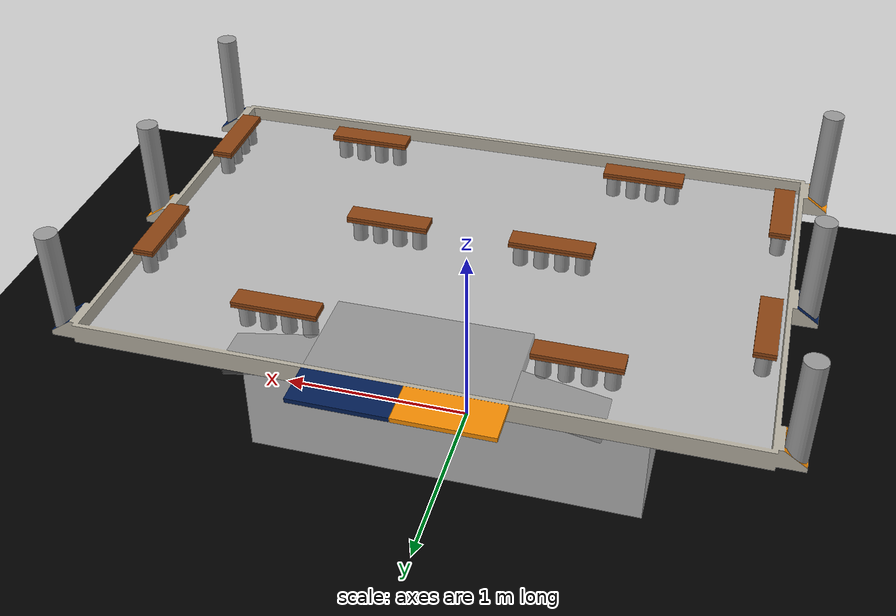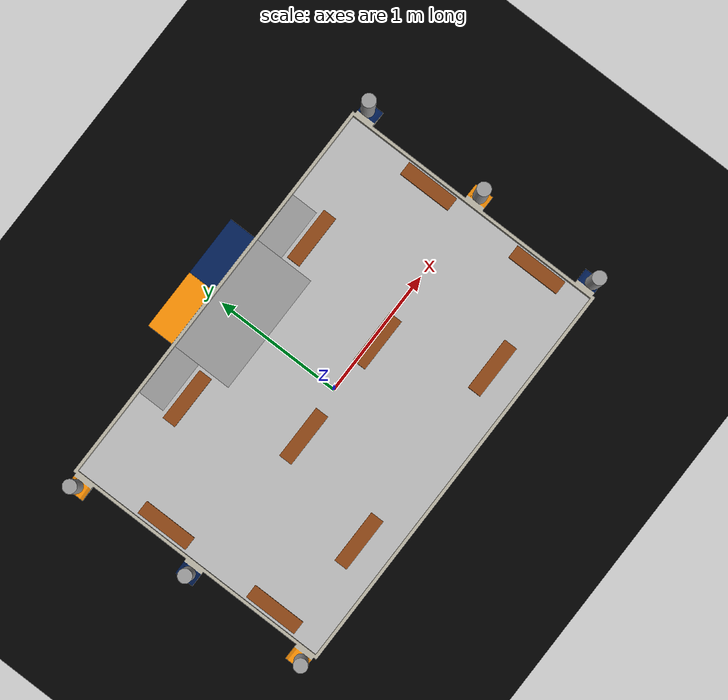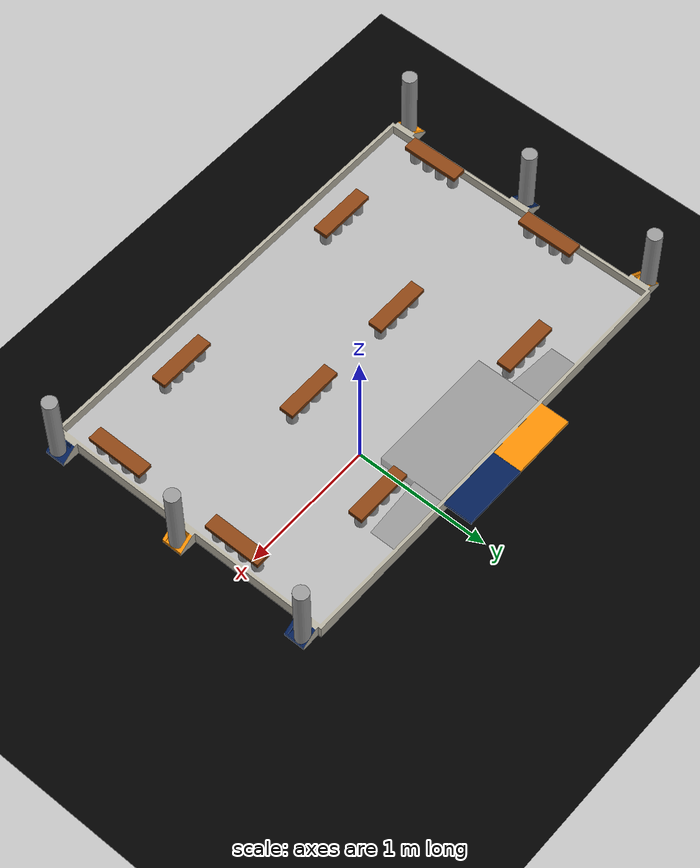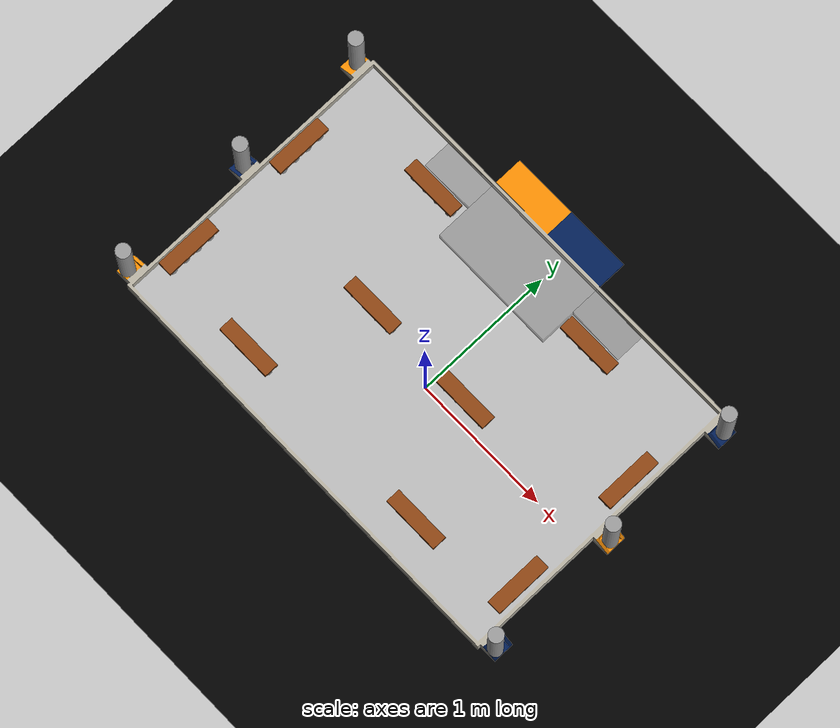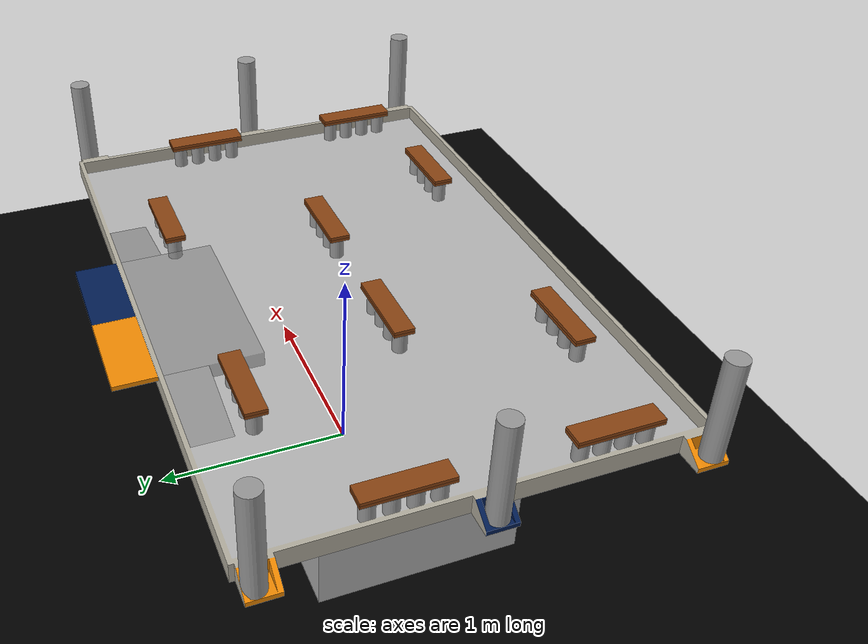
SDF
<sdf version='1.7'>
    <world name='default'>
        <!-- stand 0 -->
        <model name="column_0_0">
            <include>
                <pose>-1.425 -0.45 1 0 0 0</pose>
                <uri>model://column</uri>
            </include>
        </model>
        <model name="column_0_1">
            <include>
                <pose>-1.425 -0.55 1 0 0 0</pose>
                <uri>model://column</uri>
            </include>
        </model>
        <model name="column_0_2">
            <include>
                <pose>-1.425 -0.65 1 0 0 0</pose>
                <uri>model://column</uri>
            </include>
        </model>
        <model name="column_0_3">
            <include>
                <pose>-1.425 -0.75 1 0 0 0</pose>
                <uri>model://column</uri>
            </include>
        </model>
        <model name="platform_0_0">
            <include>
                <pose>-1.425 -0.6 1.117 0 0 1.570796</pose>
                <uri>model://platform</uri>
            </include>
        </model>
        <model name="platform_0_1">
            <include>
                <pose>-1.425 -0.6 1.132 0 0 1.570796</pose>
                <uri>model://platform</uri>
            </include>
        </model>

        <!-- stand 1 -->
        <model name="column_1_0">
            <include>
                <pose>1.425 -0.45 1 0 0 0</pose>
                <uri>model://column</uri>
            </include>
        </model>
        <model name="column_1_1">
            <include>
                <pose>1.425 -0.55 1 0 0 0</pose>
                <uri>model://column</uri>
            </include>
        </model>
        <model name="column_1_2">
            <include>
                <pose>1.425 -0.65 1 0 0 0</pose>
                <uri>model://column</uri>
            </include>
        </model>
        <model name="column_1_3">
            <include>
                <pose>1.425 -0.75 1 0 0 0</pose>
                <uri>model://column</uri>
            </include>
        </model>
        <model name="platform_1_0">
            <include>
                <pose>1.425 -0.6 1.117 0 0 1.570796</pose>
                <uri>model://platform</uri>
            </include>
        </model>
        <model name="platform_1_1">
            <include>
                <pose>1.425 -0.6 1.132 0 0 1.570796</pose>
                <uri>model://platform</uri>
            </include>
        </model>

        <!-- stand 2 -->
        <model name="column_2_0">
            <include>
                <pose>0.875 -0.765 1 0 0 0</pose>
                <uri>model://column</uri>
            </include>
        </model>
        <model name="column_2_1">
            <include>
                <pose>0.775 -0.765 1 0 0 0</pose>
                <uri>model://column</uri>
            </include>
        </model>
        <model name="column_2_2">
            <include>
                <pose>0.675 -0.765 1 0 0 0</pose>
                <uri>model://column</uri>
            </include>
        </model>
        <model name="column_2_3">
            <include>
                <pose>0.575 -0.765 1 0 0 0</pose>
                <uri>model://column</uri>
            </include>
        </model>
        <model name="platform_2_0">
            <include>
                <pose>0.725 -0.765 1.117 0 0 0</pose>
                <uri>model://platform</uri>
            </include>
        </model>
        <model name="platform_2_1">
            <include>
                <pose>0.725 -0.765 1.132 0 0 0</pose>
                <uri>model://platform</uri>
            </include>
        </model>

        <!-- stand 3 -->
        <model name="column_3_0">
            <include>
                <pose>-0.875 -0.765 1 0 0 0</pose>
                <uri>model://column</uri>
            </include>
        </model>
        <model name="column_3_1">
            <include>
                <pose>-0.775 -0.765 1 0 0 0</pose>
                <uri>model://column</uri>
            </include>
        </model>
        <model name="column_3_2">
            <include>
                <pose>-0.675 -0.765 1 0 0 0</pose>
                <uri>model://column</uri>
            </include>
        </model>
        <model name="column_3_3">
            <include>
                <pose>-0.575 -0.765 1 0 0 0</pose>
                <uri>model://column</uri>
            </include>
        </model>
        <model name="platform_3_0">
            <include>
                <pose>-0.725 -0.765 1.117 0 0 0</pose>
                <uri>model://platform</uri>
            </include>
        </model>
        <model name="platform_3_1">
            <include>
                <pose>-0.725 -0.765 1.132 0 0 0</pose>
                <uri>model://platform</uri>
            </include>
        </model>

        <!-- stand 4 -->
        <model name="column_4_0">
            <include>
                <pose>-0.55 -0.05 1 0 0 0</pose>
                <uri>model://column</uri>
            </include>
        </model>
        <model name="column_4_1">
            <include>
                <pose>-0.45 -0.05 1 0 0 0</pose>
                <uri>model://column</uri>
            </include>
        </model>
        <model name="column_4_2">
            <include>
                <pose>-0.35 -0.05 1 0 0 0</pose>
                <uri>model://column</uri>
            </include>
        </model>
        <model name="column_4_3">
            <include>
                <pose>-0.25 -0.05 1 0 0 0</pose>
                <uri>model://column</uri>
            </include>
        </model>
        <model name="platform_4_0">
            <include>
                <pose>-0.4 -0.05 1.117 0 0 0</pose>
                <uri>model://platform</uri>
            </include>
        </model>
        <model name="platform_4_1">
            <include>
                <pose>-0.4 -0.05 1.132 0 0 0</pose>
                <uri>model://platform</uri>
            </include>
        </model>

        <!-- stand 5 -->
        <model name="column_5_0">
            <include>
                <pose>0.55 -0.05 1 0 0 0</pose>
                <uri>model://column</uri>
            </include>
        </model>
        <model name="column_5_1">
            <include>
                <pose>0.45 -0.05 1 0 0 0</pose>
                <uri>model://column</uri>
            </include>
        </model>
        <model name="column_5_2">
            <include>
                <pose>0.35 -0.05 1 0 0 0</pose>
                <uri>model://column</uri>
            </include>
        </model>
        <model name="column_5_3">
            <include>
                <pose>0.25 -0.05 1 0 0 0</pose>
                <uri>model://column</uri>
            </include>
        </model>
        <model name="platform_5_0">
            <include>
                <pose>0.4 -0.05 1.117 0 0 0</pose>
                <uri>model://platform</uri>
            </include>
        </model>
        <model name="platform_5_1">
            <include>
                <pose>0.4 -0.05 1.132 0 0 0</pose>
                <uri>model://platform</uri>
            </include>
        </model>

        <!-- stand 6 -->
        <model name="column_6_0">
            <include>
                <pose>1.425 0.16 1 0 0 0</pose>
                <uri>model://column</uri>
            </include>
        </model>
        <model name="column_6_1">
            <include>
                <pose>1.425 0.26 1 0 0 0</pose>
                <uri>model://column</uri>
            </include>
        </model>
        <model name="column_6_2">
            <include>
                <pose>1.425 0.36 1 0 0 0</pose>
                <uri>model://column</uri>
            </include>
        </model>
        <model name="column_6_3">
            <include>
                <pose>1.425 0.46 1 0 0 0</pose>
                <uri>model://column</uri>
            </include>
        </model>
        <model name="platform_6_0">
            <include>
                <pose>1.425 0.31 1.117 0 0 1.570796</pose>
                <uri>model://platform</uri>
            </include>
        </model>
        <model name="platform_6_1">
            <include>
                <pose>1.425 0.31 1.132 0 0 1.570796</pose>
                <uri>model://platform</uri>
            </include>
        </model>

        <!-- stand 7 -->
        <model name="column_7_0">
            <include>
                <pose>-1.425 0.16 1 0 0 0</pose>
                <uri>model://column</uri>
            </include>
        </model>
        <model name="column_7_1">
            <include>
                <pose>-1.425 0.26 1 0 0 0</pose>
                <uri>model://column</uri>
            </include>
        </model>
        <model name="column_7_2">
            <include>
                <pose>-1.425 0.36 1 0 0 0</pose>
                <uri>model://column</uri>
            </include>
        </model>
        <model name="column_7_3">
            <include>
                <pose>-1.425 0.46 1 0 0 0</pose>
                <uri>model://column</uri>
            </include>
        </model>
        <model name="platform_7_0">
            <include>
                <pose>-1.425 0.31 1.117 0 0 1.570796</pose>
                <uri>model://platform</uri>
            </include>
        </model>
        <model name="platform_7_1">
            <include>
                <pose>-1.425 0.31 1.132 0 0 1.570796</pose>
                <uri>model://platform</uri>
            </include>
        </model>

        <!-- stand 8 -->
        <model name="column_8_0">
            <include>
                <pose>-0.825 0.715 1 0 0 0</pose>
                <uri>model://column</uri>
            </include>
        </model>
        <model name="column_8_1">
            <include>
                <pose>-0.725 0.715 1 0 0 0</pose>
                <uri>model://column</uri>
            </include>
        </model>
        <model name="column_8_2">
            <include>
                <pose>-0.625 0.715 1 0 0 0</pose>
                <uri>model://column</uri>
            </include>
        </model>
        <model name="column_8_3">
            <include>
                <pose>-0.525 0.715 1 0 0 0</pose>
                <uri>model://column</uri>
            </include>
        </model>
        <model name="platform_8_0">
            <include>
                <pose>-0.675 0.715 1.117 0 0 0</pose>
                <uri>model://platform</uri>
            </include>
        </model>
        <model name="platform_8_1">
            <include>
                <pose>-0.675 0.715 1.132 0 0 0</pose>
                <uri>model://platform</uri>
            </include>
        </model>

        <!-- stand 9 -->
        <model name="column_9_0">
            <include>
                <pose>0.825 0.715 1 0 0 0</pose>
                <uri>model://column</uri>
            </include>
        </model>
        <model name="column_9_1">
            <include>
                <pose>0.725 0.715 1 0 0 0</pose>
                <uri>model://column</uri>
            </include>
        </model>
        <model name="column_9_2">
            <include>
                <pose>0.625 0.715 1 0 0 0</pose>
                <uri>model://column</uri>
            </include>
        </model>
        <model name="column_9_3">
            <include>
                <pose>0.525 0.715 1 0 0 0</pose>
                <uri>model://column</uri>
            </include>
        </model>
        <model name="platform_9_0">
            <include>
                <pose>0.675 0.715 1.117 0 0 0</pose>
                <uri>model://platform</uri>
            </include>
        </model>
        <model name="platform_9_1">
            <include>
                <pose>0.675 0.715 1.132 0 0 0</pose>
                <uri>model://platform</uri>
            </include>
        </model>

        <!-- Beacons -->
        <include>
            <name>beacon_yellow_0</name>
            <pose>-1.594 0.95 1 0 0 0</pose>
            <uri>model://beacon</uri>
        </include>
        <include>
            <name>beacon_yellow_1</name>
            <pose>1.594 0 1 0 0 0</pose>
            <uri>model://beacon</uri>
        </include>
        <include>
            <name>beacon_yellow_2</name>
            <pose>-1.594 -0.95 1 0 0 0</pose>
            <uri>model://beacon</uri>
        </include>

        <include>
            <name>beacon_blue_0</name>
            <pose>1.594 0.95 1 0 0 0</pose>
            <uri>model://beacon</uri>
        </include>
        <include>
            <name>beacon_blue_1</name>
            <pose>-1.594 0 1 0 0 0</pose>
            <uri>model://beacon</uri>
        </include>
        <include>
            <name>beacon_blue_2</name>
            <pose>1.594 -0.95 1 0 0 0</pose>
            <uri>model://beacon</uri>
        </include>

        <!-- Board -->
        <include>
            <pose>0 0 0.978 0 0 0</pose>
            <uri>model://board</uri>
        </include>
        <model name='ramp_0'>
            <static>1</static>
            <pose>0.64 0.9 1 0 0.177 0</pose>
            <link name="link">
                <visual name="visual">
                    <geometry>
                        <box>
                            <size>0.4 0.2 0.07</size>
                        </box>
                    </geometry>
                    <material>
                        <lighting>1</lighting>
                        <shader type='pixel'>
                            <normal_map>__default__</normal_map>
                        </shader>
                        <ambient>0.8 0.8 0.8 0.5</ambient>
                        <diffuse>0.5 0.5 0.5 0.5</diffuse>
                        <specular>0.01 0.01 0.01 1</specular>
                        <emissive>0 0 0 1</emissive>
                    </material>
                </visual>
                <collision name="collision">
                    <geometry>
                        <box>
                            <size>0.4 0.2 0.07</size>
                        </box>
                    </geometry>
                </collision>
            </link>
        </model>
        <model name='ramp_1'>
            <static>1</static>
            <pose>-0.64 0.9 1 0 -0.177 0</pose>
            <link name="link">
                <visual name="visual">
                    <geometry>
                        <box>
                            <size>0.4 0.2 0.07</size>
                        </box>
                    </geometry>
                    <material>
                        <lighting>1</lighting>
                        <shader type='pixel'>
                            <normal_map>__default__</normal_map>
                        </shader>
                        <ambient>0.8 0.8 0.8 0.5</ambient>
                        <diffuse>0.5 0.5 0.5 0.5</diffuse>
                        <specular>0.01 0.01 0.01 1</specular>
                        <emissive>0 0 0 1</emissive>
                    </material>
                </visual>
                <collision name="collision">
                    <geometry>
                        <box>
                            <size>0.4 0.2 0.07</size>
                        </box>
                    </geometry>
                </collision>
            </link>
        </model>
        <model name='scene'>
            <static>1</static>
            <pose>0 0.775 1.035 0 0 0</pose>
            <link name="link">
                <visual name="visual">
                    <geometry>
                        <box>
                            <size>0.9 0.45 0.07</size>
                        </box>
                    </geometry>
                    <material>
                        <lighting>1</lighting>
                        <shader type='pixel'>
                            <normal_map>__default__</normal_map>
                        </shader>
                        <ambient>0.8 0.8 0.8 0.5</ambient>
                        <diffuse>0.5 0.5 0.5 0.5</diffuse>
                        <specular>0.01 0.01 0.01 1</specular>
                        <emissive>0 0 0 1</emissive>
                    </material>
                </visual>
                <collision name="collision">
                    <geometry>
                        <box>
                            <size>0.9 0.45 0.07</size>
                        </box>
                    </geometry>
                </collision>
            </link>
        </model>
        <model name='board_support'>
            <static>1</static>
            <pose>0 0 0.5 0 0 0</pose>
            <link name="link">
                <visual name="visual">
                    <geometry>
                        <box>
                            <size>2 1 0.978</size>
                        </box>
                    </geometry>
                    <material>
                        <lighting>1</lighting>
                        <shader type='pixel'>
                            <normal_map>__default__</normal_map>
                        </shader>
                        <ambient>1 1 1 0.5</ambient>
                        <diffuse>0.7 0.7 0.7 1</diffuse>
                        <specular>0.01 0.01 0.01 1</specular>
                        <emissive>0 0 0 1</emissive>
                    </material>
                </visual>
                <collision name="collision">
                    <geometry>
                        <box>
                            <size>2 1 0.978</size>
                        </box>
                    </geometry>
                </collision>
            </link>
        </model>
        <model name='ground_plane'>
            <static>1</static>
            <link name='link'>
                <collision name='collision'>
                    <geometry>
                        <plane>
                            <normal>0 0 1</normal>
                            <size>20 20</size>
                        </plane>
                    </geometry>
                    <max_contacts>10</max_contacts>
                </collision>
                <visual name="visual">
                    <geometry>
                        <plane>
                            <normal>0 0 1</normal>
                            <size>20 20</size>
                        </plane>
                    </geometry>
                    <material>
                        <lighting>1</lighting>
                        <ambient>0.4 0.4 0.4 1</ambient>
                        <diffuse>0 0 0 1</diffuse>
                        <specular>0 0 0 1</specular>
                        <emissive>0 0 0 1</emissive>
                    </material>
                </visual>
                <self_collide>0</self_collide>
                <enable_wind>0</enable_wind>
                <kinematic>0</kinematic>
            </link>
        </model>
        <light name='spot_top' type='spot'>
            <pose>0 0 10 0 0 0</pose>
            <diffuse>1 1 1 1</diffuse>
            <specular>0.1 0.1 0.1 1</specular>
            <direction>0 0 -1</direction>
            <attenuation>
                <range>20</range>
                <constant>0.05</constant>
                <linear>0.01</linear>
                <quadratic>0.001</quadratic>
            </attenuation>
            <cast_shadows>0</cast_shadows>
            <spot>
                <inner_angle>0.6</inner_angle>
                <outer_angle>1</outer_angle>
                <falloff>1</falloff>
            </spot>
        </light>
        <light name='spot_bl' type='spot'>
            <pose>-12 -12 2 0 0 0</pose>
            <diffuse>1 1 1 1</diffuse>
            <specular>0.1 0.1 0.1 1</specular>
            <direction>1 1 -0.01</direction>
            <attenuation>
                <range>20</range>
                <constant>0.05</constant>
                <linear>0.01</linear>
                <quadratic>0.001</quadratic>
            </attenuation>
            <cast_shadows>0</cast_shadows>
            <spot>
                <inner_angle>0.6</inner_angle>
                <outer_angle>1</outer_angle>
                <falloff>1</falloff>
            </spot>
        </light>
        <light name='spot_tr' type='spot'>
            <pose>12 12 2 0 0 0</pose>
            <diffuse>1 1 1 1</diffuse>
            <specular>0.1 0.1 0.1 1</specular>
            <direction>-1 -1 -0.01</direction>
            <attenuation>
                <range>20</range>
                <constant>0.05</constant>
                <linear>0.01</linear>
                <quadratic>0.001</quadratic>
            </attenuation>
            <cast_shadows>0</cast_shadows>
            <spot>
                <inner_angle>0.6</inner_angle>
                <outer_angle>1</outer_angle>
                <falloff>1</falloff>
            </spot>
        </light>
        <light name='sun' type='directional'>
            <cast_shadows>1</cast_shadows>
            <pose>0 0 10 0 -0 0</pose>
            <diffuse>0.8 0.8 0.8 1</diffuse>
            <specular>0.2 0.2 0.2 1</specular>
            <attenuation>
                <range>1000</range>
                <constant>0.9</constant>
                <linear>0.01</linear>
                <quadratic>0.001</quadratic>
            </attenuation>
            <direction>-0.5 0.1 -0.9</direction>
            <spot>
                <inner_angle>0</inner_angle>
                <outer_angle>0</outer_angle>
                <falloff>0</falloff>
            </spot>
        </light>
        <gui fullscreen='0'>
            <camera name='user_camera'>
                <pose>0 -4.5 5.5 0 0.8 1.6</pose>
                <view_controller>orbit</view_controller>
                <projection_type>perspective</projection_type>
            </camera>
        </gui>
    </world>
</sdf>

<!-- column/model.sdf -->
<sdf version='1.7'>
    <model name='column'>
        <link name='link_1'>
            <inertial>
                <mass>0.05</mass>
                <inertia>
                    <ixx>0.00225266</ixx>
                    <ixy>0</ixy>
                    <ixz>0</ixz>
                    <iyy>0.00225266</iyy>
                    <iyz>0</iyz>
                    <izz>0.00258456</izz>
                </inertia>
                <pose>0 0 0 0 -0 0</pose>
            </inertial>
            <pose>0 0 0.0545 0 -0 0</pose>
            <gravity>1</gravity>
            <self_collide>0</self_collide>
            <kinematic>0</kinematic>
            <enable_wind>0</enable_wind>
            <visual name='visual'>
                <pose>0 0 0 0 -0 0</pose>
                <geometry>
                    <cylinder>
                        <radius>0.03515</radius>
                        <length>0.109</length>
                    </cylinder>
                </geometry>
                <material>
                    <lighting>1</lighting>
                    <shader type='pixel'>
                        <normal_map>__default__</normal_map>
                    </shader>
                    <ambient>0.6 0.6 0.6 1</ambient>
                    <diffuse>0.6 0.6 0.6 1</diffuse>
                </material>
                <transparency>0</transparency>
                <cast_shadows>1</cast_shadows>
            </visual>
            <collision name='collision'>
                <laser_retro>0</laser_retro>
                <max_contacts>10</max_contacts>
                <pose>0 0 0 0 -0 0</pose>
                <geometry>
                    <cylinder>
                        <radius>0.03515</radius>
                        <length>0.109</length>
                    </cylinder>
                </geometry>
                <surface>
                    <friction>
                        <ode>
                            <mu>1</mu>
                            <mu2>1</mu2>
                            <fdir1>0 0 0</fdir1>
                            <slip1>0</slip1>
                            <slip2>0</slip2>
                        </ode>
                        <torsional>
                            <coefficient>1</coefficient>
                            <patch_radius>0</patch_radius>
                            <surface_radius>0</surface_radius>
                            <use_patch_radius>1</use_patch_radius>
                            <ode>
                                <slip>0</slip>
                            </ode>
                        </torsional>
                    </friction>
                    <bounce>
                        <restitution_coefficient>0</restitution_coefficient>
                        <threshold>1e+06</threshold>
                    </bounce>
                    <contact>
                        <collide_without_contact>0</collide_without_contact>
                        <collide_without_contact_bitmask>1</collide_without_contact_bitmask>
                        <collide_bitmask>1</collide_bitmask>
                        <ode>
                            <soft_cfm>0</soft_cfm>
                            <soft_erp>0.2</soft_erp>
                            <kp>1e+13</kp>
                            <kd>1</kd>
                            <max_vel>0.01</max_vel>
                            <min_depth>0</min_depth>
                        </ode>
                        <bullet>
                            <split_impulse>1</split_impulse>
                            <split_impulse_penetration_threshold>-0.01</split_impulse_penetration_threshold>
                            <soft_cfm>0</soft_cfm>
                            <soft_erp>0.2</soft_erp>
                            <kp>1e+13</kp>
                            <kd>1</kd>
                        </bullet>
                    </contact>
                </surface>
            </collision>
        </link>
        <static>0</static>
        <allow_auto_disable>1</allow_auto_disable>
    </model>
</sdf>

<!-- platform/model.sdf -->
<sdf version='1.7'>
    <model name='platform'>
        <link name='link_2'>
            <inertial>
                <mass>0.42</mass>
                <inertia>
                    <ixx>0.07</ixx>
                    <ixy>0</ixy>
                    <ixz>0</ixz>
                    <iyy>0.07</iyy>
                    <iyz>0</iyz>
                    <izz>0.07</izz>
                </inertia>
                <pose>0 0 0 0 -0 0</pose>
            </inertial>
            <pose>0 0 -0 0 -0 0</pose>
            <gravity>1</gravity>
            <self_collide>0</self_collide>
            <kinematic>0</kinematic>
            <enable_wind>0</enable_wind>
            <visual name='visual'>
                <pose>0 0 0 0 -0 0</pose>
                <geometry>
                    <box>
                        <size>0.4 0.1 0.015</size>
                    </box>
                </geometry>
                <material>
                    <lighting>1</lighting>
                    <shader type='pixel'>
                        <normal_map>__default__</normal_map>
                    </shader>
                    <ambient>0.545 0.267 0.074 1</ambient>
                    <diffuse>0.545 0.267 0.074 1</diffuse>
                    <specular>0.01 0.01 0.01 1</specular>
                    <emissive>0 0 0 1</emissive>
                </material>
                <transparency>0</transparency>
                <cast_shadows>1</cast_shadows>
            </visual>
            <collision name='collision'>
                <laser_retro>0</laser_retro>
                <max_contacts>10</max_contacts>
                <pose>0 0 0 0 -0 0</pose>
                <geometry>
                    <box>
                        <size>0.4 0.1 0.015</size>
                    </box>
                </geometry>
                <surface>
                    <friction>
                        <ode>
                            <mu>1</mu>
                            <mu2>1</mu2>
                            <fdir1>0 0 0</fdir1>
                            <slip1>0</slip1>
                            <slip2>0</slip2>
                        </ode>
                        <torsional>
                            <coefficient>1</coefficient>
                            <patch_radius>0</patch_radius>
                            <surface_radius>0</surface_radius>
                            <use_patch_radius>1</use_patch_radius>
                            <ode>
                                <slip>0</slip>
                            </ode>
                        </torsional>
                    </friction>
                    <bounce>
                        <restitution_coefficient>0</restitution_coefficient>
                        <threshold>1e+06</threshold>
                    </bounce>
                    <contact>
                        <collide_without_contact>0</collide_without_contact>
                        <collide_without_contact_bitmask>1</collide_without_contact_bitmask>
                        <collide_bitmask>1</collide_bitmask>
                        <ode>
                            <soft_cfm>0</soft_cfm>
                            <soft_erp>0.2</soft_erp>
                            <kp>1e+13</kp>
                            <kd>1</kd>
                            <max_vel>0.01</max_vel>
                            <min_depth>0</min_depth>
                        </ode>
                        <bullet>
                            <split_impulse>1</split_impulse>
                            <split_impulse_penetration_threshold>-0.01</split_impulse_penetration_threshold>
                            <soft_cfm>0</soft_cfm>
                            <soft_erp>0.2</soft_erp>
                            <kp>1e+13</kp>
                            <kd>1</kd>
                        </bullet>
                    </contact>
                </surface>
            </collision>
        </link>
        <static>0</static>
        <allow_auto_disable>1</allow_auto_disable>
    </model>
</sdf>

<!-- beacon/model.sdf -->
<sdf version='1.7'>
    <model name='beacon'>
        <link name='link_0'>
            <inertial>
                <mass>0.5</mass>
                <inertia>
                    <ixx>0.0107292</ixx>
                    <ixy>0</ixy>
                    <ixz>0</ixz>
                    <iyy>0.0107292</iyy>
                    <iyz>0</iyz>
                    <izz>0.000625</izz>
                </inertia>
                <pose>0 0 0 0 -0 0</pose>
            </inertial>
            <pose>0 0 0 0 -0 0</pose>
            <gravity>1</gravity>
            <self_collide>0</self_collide>
            <kinematic>0</kinematic>
            <enable_wind>0</enable_wind>
            <visual name='visual'>
                <pose>0 0 0.25 0 -0 0</pose>
                <geometry>
                    <cylinder>
                        <radius>0.05</radius>
                        <length>0.5</length>
                    </cylinder>
                </geometry>
                <material>
                    <lighting>1</lighting>
                    <script>
                        <uri>file://media/materials/scripts/gazebo.material</uri>
                        <name>Gazebo/Grey</name>
                    </script>
                    <shader type='pixel'>
                        <normal_map>__default__</normal_map>
                    </shader>
                    <ambient>0.9 0.9 0.9 1</ambient>
                    <diffuse>0.9 0.9 0.9 1</diffuse>
                    <specular>0.01 0.01 0.01 1</specular>
                    <emissive>0 0 0 1</emissive>
                </material>
                <transparency>0</transparency>
                <cast_shadows>1</cast_shadows>
            </visual>
            <collision name='collision'>
                <laser_retro>0</laser_retro>
                <max_contacts>10</max_contacts>
                <pose>0 0 0.25 0 -0 0</pose>
                <geometry>
                    <cylinder>
                        <radius>0.05</radius>
                        <length>0.5</length>
                    </cylinder>
                </geometry>
                <surface>
                    <friction>
                        <ode>
                            <mu>1</mu>
                            <mu2>1</mu2>
                            <fdir1>0 0 0</fdir1>
                            <slip1>0</slip1>
                            <slip2>0</slip2>
                        </ode>
                        <torsional>
                            <coefficient>1</coefficient>
                            <patch_radius>0</patch_radius>
                            <surface_radius>0</surface_radius>
                            <use_patch_radius>1</use_patch_radius>
                            <ode>
                                <slip>0</slip>
                            </ode>
                        </torsional>
                    </friction>
                    <bounce>
                        <restitution_coefficient>0</restitution_coefficient>
                        <threshold>1e+06</threshold>
                    </bounce>
                    <contact>
                        <collide_without_contact>0</collide_without_contact>
                        <collide_without_contact_bitmask>1</collide_without_contact_bitmask>
                        <collide_bitmask>1</collide_bitmask>
                        <ode>
                            <soft_cfm>0</soft_cfm>
                            <soft_erp>0.2</soft_erp>
                            <kp>1e+13</kp>
                            <kd>1</kd>
                            <max_vel>0.01</max_vel>
                            <min_depth>0</min_depth>
                        </ode>
                        <bullet>
                            <split_impulse>1</split_impulse>
                            <split_impulse_penetration_threshold>-0.01</split_impulse_penetration_threshold>
                            <soft_cfm>0</soft_cfm>
                            <soft_erp>0.2</soft_erp>
                            <kp>1e+13</kp>
                            <kd>1</kd>
                        </bullet>
                    </contact>
                </surface>
            </collision>
        </link>
        <static>1</static>
        <allow_auto_disable>1</allow_auto_disable>
    </model>
</sdf>

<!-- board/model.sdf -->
<sdf version='1.7'>
    <model name='board'>
        <link name='link_0'>
            <pose>0 0 0 0 -0 0</pose>
            <gravity>1</gravity>
            <self_collide>0</self_collide>
            <kinematic>0</kinematic>
            <enable_wind>0</enable_wind>
            <visual name='visual'>
                <pose>0 0 0 0 0 0</pose>
                <geometry>
                    <mesh>
                        <uri>model://board/meshes/board.dae</uri>
                        <scale>1 1 1</scale>
                    </mesh>
                </geometry>
                <transparency>0</transparency>
                <cast_shadows>1</cast_shadows>
            </visual>
            <collision name='collision'>
                <laser_retro>0</laser_retro>
                <max_contacts>10</max_contacts>
                <pose>0 0 0 0 0 0</pose>
                <geometry>
                    <mesh>
                        <uri>model://board/meshes/board.dae</uri>
                        <scale>1 1 1</scale>
                    </mesh>
                </geometry>
            </collision>
        </link>
        <static>1</static>
        <allow_auto_disable>1</allow_auto_disable>
    </model>
</sdf>
